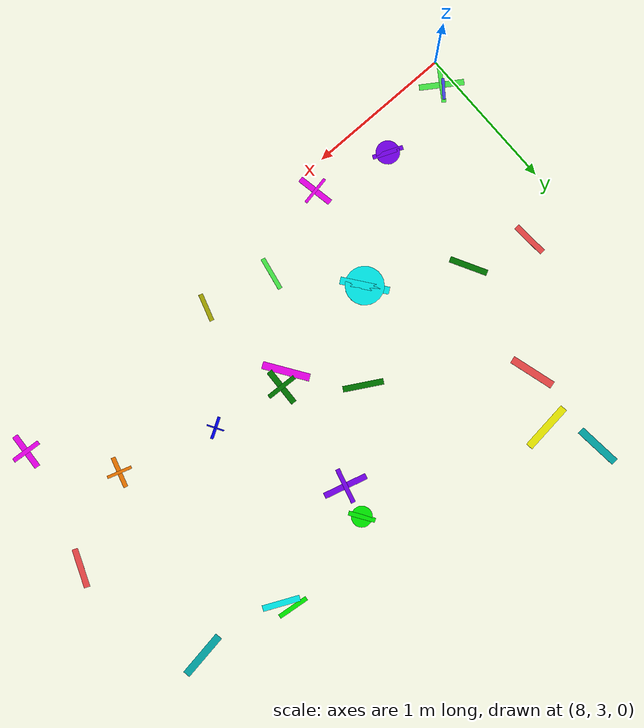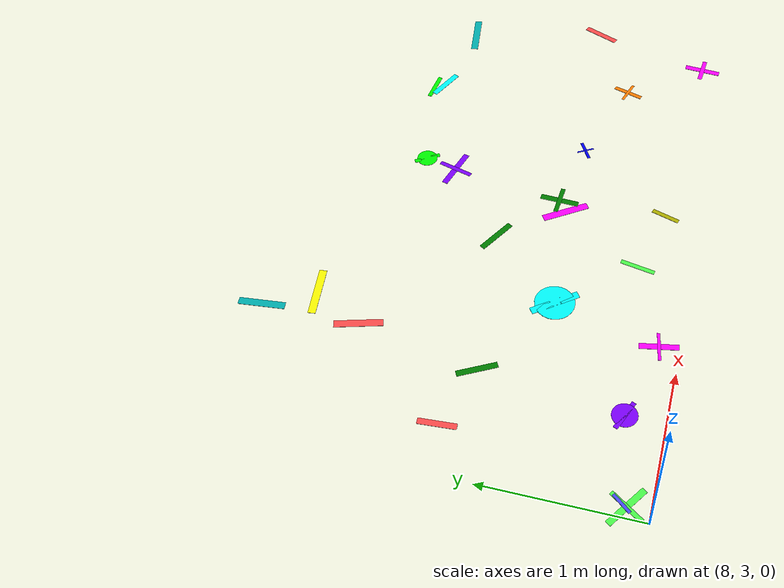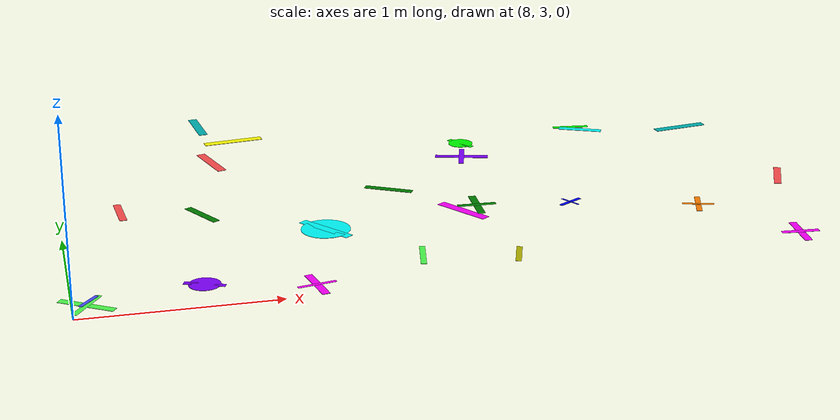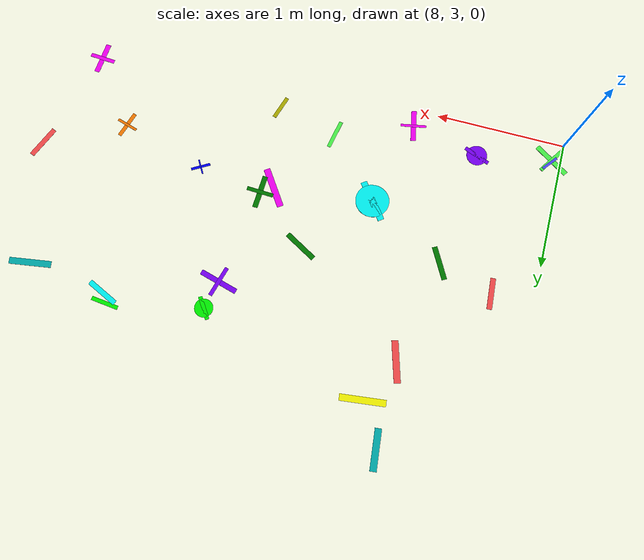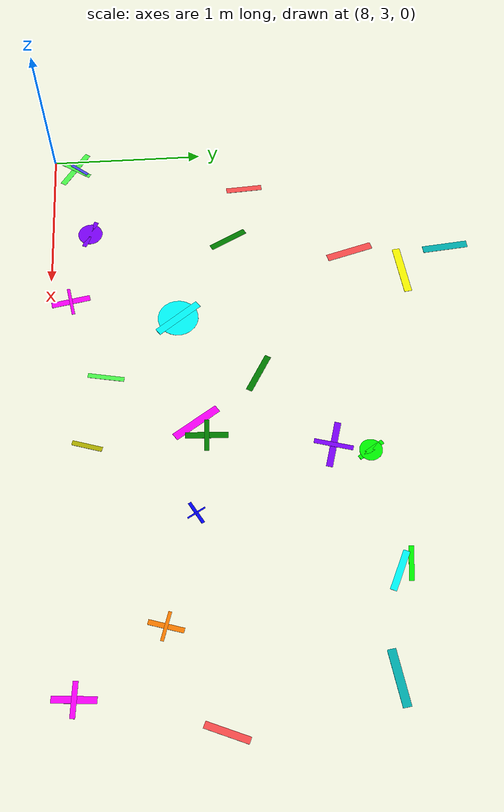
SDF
<sdf version="1.6">
 <world name="default">
  <model name="letter_Y_1735">
   <static>true</static>
   <pose>8.08 3.17 0.012 0 0 4.040</pose>
   <link name="link">
    <visual name="visual">
     <geometry><box><size>0.14 0.02 0.002</size></box></geometry>
     <material>
      <ambient>0.3 0.3 1.0 1</ambient>
      <diffuse>0.3 0.3 1.0 1</diffuse>
      <specular>0.1 0.1 0.1 1</specular>
     </material>
    </visual>
   </link>
  </model>
  <model name="letter_T_1736">
   <static>true</static>
   <pose>8.07 3.14 0.005 0 0 2.555</pose>
   <link name="link">
    <visual name="visual">
     <geometry><box><size>0.30 0.04 0.002</size></box></geometry>
     <material>
      <ambient>0.3 1.0 0.3 1</ambient>
      <diffuse>0.3 1.0 0.3 1</diffuse>
      <specular>0.1 0.1 0.1 1</specular>
     </material>
    </visual>
    <visual name="visual2">
     <pose>0 0 0.001 0 0 1.57</pose>
     <geometry><box><size>0.24 0.03 0.001</size></box></geometry>
     <material><ambient>0.3 1.0 0.3 1</ambient><diffuse>0.3 1.0 0.3 1</diffuse></material>
    </visual>
   </link>
  </model>
  <model name="letter_X_1738">
   <static>true</static>
   <pose>8.32 4.30 0.010 0 0 4.779</pose>
   <link name="link">
    <visual name="visual">
     <geometry><box><size>0.24 0.04 0.002</size></box></geometry>
     <material>
      <ambient>1.0 0.3 0.3 1</ambient>
      <diffuse>1.0 0.3 0.3 1</diffuse>
      <specular>0.1 0.1 0.1 1</specular>
     </material>
    </visual>
   </link>
  </model>
  <model name="letter_L_1815">
   <static>true</static>
   <pose>9.17 3.13 0.003 0 0 1.756</pose>
   <link name="link">
    <visual name="visual">
     <geometry><box><size>0.25 0.04 0.002</size></box></geometry>
     <material>
      <ambient>1.0 0.0 1.0 1</ambient>
      <diffuse>1.0 0.0 1.0 1</diffuse>
      <specular>0.1 0.1 0.1 1</specular>
     </material>
    </visual>
    <visual name="visual2">
     <pose>0 0 0.001 0 0 1.57</pose>
     <geometry><box><size>0.20 0.02 0.001</size></box></geometry>
     <material><ambient>1.0 0.0 1.0 1</ambient><diffuse>1.0 0.0 1.0 1</diffuse></material>
    </visual>
   </link>
  </model>
  <model name="letter_O_1817">
   <static>true</static>
   <pose>8.64 3.25 0.008 0 0 5.898</pose>
   <link name="link">
    <visual name="visual">
     <geometry><box><size>0.21 0.03 0.002</size></box></geometry>
     <material>
      <ambient>0.5 0.0 1.0 1</ambient>
      <diffuse>0.5 0.0 1.0 1</diffuse>
      <specular>0.1 0.1 0.1 1</specular>
     </material>
    </visual>
    <visual name="visual2">
     <geometry><cylinder><radius>0.08</radius><length>0.002</length></cylinder></geometry>
     <material><ambient>0.5 0.0 1.0 1</ambient><diffuse>0.5 0.0 1.0 1</diffuse></material>
    </visual>
   </link>
  </model>
  <model name="letter_J_1818">
   <static>true</static>
   <pose>8.74 4.17 0.009 0 0 5.209</pose>
   <link name="link">
    <visual name="visual">
     <geometry><box><size>0.26 0.04 0.002</size></box></geometry>
     <material>
      <ambient>0.0 0.5 0.0 1</ambient>
      <diffuse>0.0 0.5 0.0 1</diffuse>
      <specular>0.1 0.1 0.1 1</specular>
     </material>
    </visual>
   </link>
  </model>
  <model name="letter_O_1819">
   <static>true</static>
   <pose>9.34 3.82 0.007 0 0 2.217</pose>
   <link name="link">
    <visual name="visual">
     <geometry><box><size>0.33 0.05 0.002</size></box></geometry>
     <material>
      <ambient>0.0 1.0 1.0 1</ambient>
      <diffuse>0.0 1.0 1.0 1</diffuse>
      <specular>0.1 0.1 0.1 1</specular>
     </material>
    </visual>
    <visual name="visual2">
     <geometry><cylinder><radius>0.13</radius><length>0.002</length></cylinder></geometry>
     <material><ambient>0.0 1.0 1.0 1</ambient><diffuse>0.0 1.0 1.0 1</diffuse></material>
    </visual>
   </link>
  </model>
  <model name="letter_M_1820">
   <static>true</static>
   <pose>9.06 5.30 0.012 0 0 0.120</pose>
   <link name="link">
    <visual name="visual">
     <geometry><box><size>0.34 0.05 0.002</size></box></geometry>
     <material>
      <ambient>1.0 1.0 0.0 1</ambient>
      <diffuse>1.0 1.0 0.0 1</diffuse>
      <specular>0.1 0.1 0.1 1</specular>
     </material>
    </visual>
   </link>
  </model>
  <model name="letter_B_1821">
   <static>true</static>
   <pose>8.89 4.97 0.009 0 0 1.851</pose>
   <link name="link">
    <visual name="visual">
     <geometry><box><size>0.31 0.05 0.002</size></box></geometry>
     <material>
      <ambient>1.0 0.3 0.3 1</ambient>
      <diffuse>1.0 0.3 0.3 1</diffuse>
      <specular>0.1 0.1 0.1 1</specular>
     </material>
    </visual>
   </link>
  </model>
  <model name="letter_X_1822">
   <static>true</static>
   <pose>8.89 5.61 0.010 0 0 1.672</pose>
   <link name="link">
    <visual name="visual">
     <geometry><box><size>0.30 0.05 0.002</size></box></geometry>
     <material>
      <ambient>0.0 0.7 0.7 1</ambient>
      <diffuse>0.0 0.7 0.7 1</diffuse>
      <specular>0.1 0.1 0.1 1</specular>
     </material>
    </visual>
   </link>
  </model>
  <model name="letter_K_1897">
   <static>true</static>
   <pose>9.75 3.36 0.006 0 0 1.381</pose>
   <link name="link">
    <visual name="visual">
     <geometry><box><size>0.23 0.03 0.002</size></box></geometry>
     <material>
      <ambient>0.3 1.0 0.3 1</ambient>
      <diffuse>0.3 1.0 0.3 1</diffuse>
      <specular>0.1 0.1 0.1 1</specular>
     </material>
    </visual>
   </link>
  </model>
  <model name="letter_B_1898">
   <static>true</static>
   <pose>10.22 3.25 0.011 0 0 4.409</pose>
   <link name="link">
    <visual name="visual">
     <geometry><box><size>0.19 0.03 0.002</size></box></geometry>
     <material>
      <ambient>0.7 0.7 0.0 1</ambient>
      <diffuse>0.7 0.7 0.0 1</diffuse>
      <specular>0.1 0.1 0.1 1</specular>
     </material>
    </visual>
   </link>
  </model>
  <model name="letter_J_1899">
   <static>true</static>
   <pose>9.78 4.31 0.009 0 0 5.766</pose>
   <link name="link">
    <visual name="visual">
     <geometry><box><size>0.27 0.04 0.002</size></box></geometry>
     <material>
      <ambient>0.0 0.5 0.0 1</ambient>
      <diffuse>0.0 0.5 0.0 1</diffuse>
      <specular>0.1 0.1 0.1 1</specular>
     </material>
    </visual>
   </link>
  </model>
  <model name="letter_H_1900">
   <static>true</static>
   <pose>10.19 3.97 0.008 0 0 4.668</pose>
   <link name="link">
    <visual name="visual">
     <geometry><box><size>0.26 0.04 0.002</size></box></geometry>
     <material>
      <ambient>0.0 0.5 0.0 1</ambient>
      <diffuse>0.0 0.5 0.0 1</diffuse>
      <specular>0.1 0.1 0.1 1</specular>
     </material>
    </visual>
    <visual name="visual2">
     <pose>0 0 0.001 0 0 1.57</pose>
     <geometry><box><size>0.21 0.03 0.001</size></box></geometry>
     <material><ambient>0.0 0.5 0.0 1</ambient><diffuse>0.0 0.5 0.0 1</diffuse></material>
    </visual>
   </link>
  </model>
  <model name="letter_K_1901">
   <static>true</static>
   <pose>10.10 3.91 0.005 0 0 2.165</pose>
   <link name="link">
    <visual name="visual">
     <geometry><box><size>0.32 0.05 0.002</size></box></geometry>
     <material>
      <ambient>1.0 0.0 1.0 1</ambient>
      <diffuse>1.0 0.0 1.0 1</diffuse>
      <specular>0.1 0.1 0.1 1</specular>
     </material>
    </visual>
   </link>
  </model>
  <model name="letter_H_1902">
   <static>true</static>
   <pose>10.30 4.73 0.010 0 0 6.015</pose>
   <link name="link">
    <visual name="visual">
     <geometry><box><size>0.30 0.04 0.002</size></box></geometry>
     <material>
      <ambient>0.5 0.0 1.0 1</ambient>
      <diffuse>0.5 0.0 1.0 1</diffuse>
      <specular>0.1 0.1 0.1 1</specular>
     </material>
    </visual>
    <visual name="visual2">
     <pose>0 0 0.001 0 0 1.57</pose>
     <geometry><box><size>0.24 0.03 0.001</size></box></geometry>
     <material><ambient>0.5 0.0 1.0 1</ambient><diffuse>0.5 0.0 1.0 1</diffuse></material>
    </visual>
   </link>
  </model>
  <model name="letter_O_1903">
   <static>true</static>
   <pose>10.35 4.95 0.011 0 0 2.157</pose>
   <link name="link">
    <visual name="visual">
     <geometry><box><size>0.18 0.03 0.002</size></box></geometry>
     <material>
      <ambient>0.0 1.0 0.0 1</ambient>
      <diffuse>0.0 1.0 0.0 1</diffuse>
      <specular>0.1 0.1 0.1 1</specular>
     </material>
    </visual>
    <visual name="visual2">
     <geometry><cylinder><radius>0.07</radius><length>0.002</length></cylinder></geometry>
     <material><ambient>0.0 1.0 0.0 1</ambient><diffuse>0.0 1.0 0.0 1</diffuse></material>
    </visual>
   </link>
  </model>
  <model name="letter_L_1980">
   <static>true</static>
   <pose>11.35 3.70 0.007 0 0 1.274</pose>
   <link name="link">
    <visual name="visual">
     <geometry><box><size>0.21 0.03 0.002</size></box></geometry>
     <material>
      <ambient>1.0 0.5 0.0 1</ambient>
      <diffuse>1.0 0.5 0.0 1</diffuse>
      <specular>0.1 0.1 0.1 1</specular>
     </material>
    </visual>
    <visual name="visual2">
     <pose>0 0 0.001 0 0 1.57</pose>
     <geometry><box><size>0.17 0.02 0.001</size></box></geometry>
     <material><ambient>1.0 0.5 0.0 1</ambient><diffuse>1.0 0.5 0.0 1</diffuse></material>
    </visual>
   </link>
  </model>
  <model name="letter_F_1981">
   <static>true</static>
   <pose>10.69 3.89 0.009 0 0 3.674</pose>
   <link name="link">
    <visual name="visual">
     <geometry><box><size>0.15 0.02 0.002</size></box></geometry>
     <material>
      <ambient>0.0 0.0 1.0 1</ambient>
      <diffuse>0.0 0.0 1.0 1</diffuse>
      <specular>0.1 0.1 0.1 1</specular>
     </material>
    </visual>
    <visual name="visual2">
     <pose>0 0 0.001 0 0 1.57</pose>
     <geometry><box><size>0.12 0.01 0.001</size></box></geometry>
     <material><ambient>0.0 0.0 1.0 1</ambient><diffuse>0.0 0.0 1.0 1</diffuse></material>
    </visual>
   </link>
  </model>
  <model name="letter_X_1982">
   <static>true</static>
   <pose>11.11 5.03 0.009 0 0 2.706</pose>
   <link name="link">
    <visual name="visual">
     <geometry><box><size>0.25 0.04 0.002</size></box></geometry>
     <material>
      <ambient>0.0 1.0 1.0 1</ambient>
      <diffuse>0.0 1.0 1.0 1</diffuse>
      <specular>0.1 0.1 0.1 1</specular>
     </material>
    </visual>
   </link>
  </model>
  <model name="letter_X_1983">
   <static>true</static>
   <pose>11.07 5.10 0.005 0 0 3.029</pose>
   <link name="link">
    <visual name="visual">
     <geometry><box><size>0.21 0.03 0.002</size></box></geometry>
     <material>
      <ambient>0.0 1.0 0.0 1</ambient>
      <diffuse>0.0 1.0 0.0 1</diffuse>
      <specular>0.1 0.1 0.1 1</specular>
     </material>
    </visual>
   </link>
  </model>
  <model name="letter_E_2049">
   <static>true</static>
   <pose>11.72 3.20 0.009 0 0 4.638</pose>
   <link name="link">
    <visual name="visual">
     <geometry><box><size>0.25 0.04 0.002</size></box></geometry>
     <material>
      <ambient>1.0 0.0 1.0 1</ambient>
      <diffuse>1.0 0.0 1.0 1</diffuse>
      <specular>0.1 0.1 0.1 1</specular>
     </material>
    </visual>
    <visual name="visual2">
     <pose>0 0 0.001 0 0 1.57</pose>
     <geometry><box><size>0.20 0.03 0.001</size></box></geometry>
     <material><ambient>1.0 0.0 1.0 1</ambient><diffuse>1.0 0.0 1.0 1</diffuse></material>
    </visual>
   </link>
  </model>
  <model name="letter_J_2054">
   <static>true</static>
   <pose>11.94 4.01 0.008 0 0 1.182</pose>
   <link name="link">
    <visual name="visual">
     <geometry><box><size>0.26 0.04 0.002</size></box></geometry>
     <material>
      <ambient>1.0 0.3 0.3 1</ambient>
      <diffuse>1.0 0.3 0.3 1</diffuse>
      <specular>0.1 0.1 0.1 1</specular>
     </material>
    </visual>
   </link>
  </model>
  <model name="letter_D_2057">
   <static>true</static>
   <pose>11.71 4.95 0.003 0 0 3.293</pose>
   <link name="link">
    <visual name="visual">
     <geometry><box><size>0.32 0.05 0.002</size></box></geometry>
     <material>
      <ambient>0.0 0.7 0.7 1</ambient>
      <diffuse>0.0 0.7 0.7 1</diffuse>
      <specular>0.1 0.1 0.1 1</specular>
     </material>
    </visual>
   </link>
  </model>
 </world>
</sdf>
